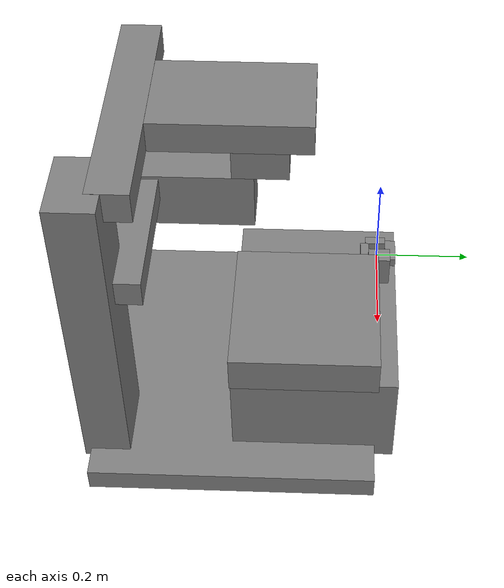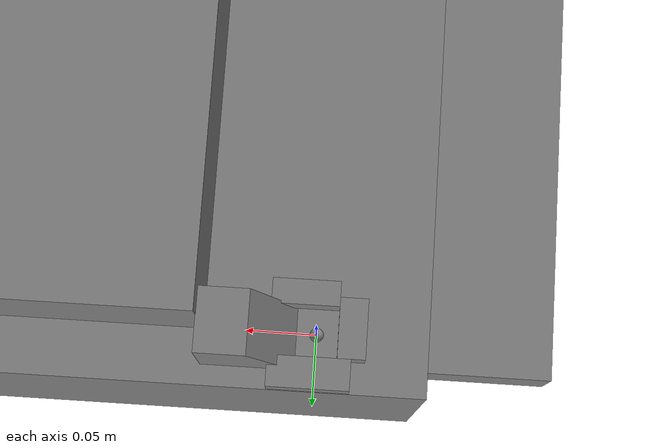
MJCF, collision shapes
<mujoco model="profactor_station">
    <compiler convexhull="true" angle="radian" meshdir="environment_parts/" />
    <default>
      <default class="collision4">
        <geom group="3" contype="1" conaffinity="1"/>
      </default>
      <default class="visual5">
        <geom group="0" contype="0" conaffinity="0"/>
      </default>
        </default>
    <asset>
        <mesh name="profactor_station" file="Profactor_station/assets_station/Profactor_camera_station0.obj" scale="1 1 1"/>

        <mesh name="col1" file="Profactor_station/assets_station/collisions/Collisions1.obj" scale="100 100 100"/>
        <mesh name="col2" file="Profactor_station/assets_station/collisions/Collisions2.obj" scale="100 100 100"/>
        <mesh name="col3" file="Profactor_station/assets_station/collisions/Collisions3.obj" scale="100 100 100"/>
        <mesh name="col4" file="Profactor_station/assets_station/collisions/Collisions4.obj" scale="100 100 100"/>
        <mesh name="col5" file="Profactor_station/assets_station/collisions/Collisions5.obj" scale="100 100 100"/>
        <mesh name="col6" file="Profactor_station/assets_station/collisions/Collisions6.obj" scale="100 100 100"/>
        <mesh name="col7" file="Profactor_station/assets_station/collisions/Collisions7.obj" scale="100 100 100"/>
        <mesh name="col8" file="Profactor_station/assets_station/collisions/Collisions8.obj" scale="100 100 100"/>
        <mesh name="col9" file="Profactor_station/assets_station/collisions/Collisions9.obj" scale="100 100 100"/>
        <mesh name="col10" file="Profactor_station/assets_station/collisions/Collisions10.obj" scale="100 100 100"/>
        <mesh name="col11" file="Profactor_station/assets_station/collisions/Collisions11.obj" scale="100 100 100"/>
        <mesh name="col12" file="Profactor_station/assets_station/collisions/Collisions12.obj" scale="100 100 100"/>
        <mesh name="col13" file="Profactor_station/assets_station/collisions/Collisions13.obj" scale="100 100 100"/>
    </asset>
  <worldbody>
      <!--light pos="0 0 1.5" dir="0 0 -1" directional="true"/-->
        <body name="profactor_station" pos="0 0 0.0">
            <site name="gripping_point" pos="0 0 0" quat="0 -1 0 0"/>
              <inertial pos="0.0 0.0 0.0"  mass="1.0" diaginertia="0.0 0.0 0.0"/>
              <geom name="profactor_station" mesh="profactor_station"  type="mesh" class="visual5"/>

              <geom name="col1" mesh="col1"  type="mesh" class="collision4" />
              <geom name="col2" mesh="col2"  type="mesh" class="collision4" />
              <geom name="col3" mesh="col3"  type="mesh" class="collision4" />
              <geom name="col4" mesh="col4"  type="mesh" class="collision4" />
              <geom name="col5" mesh="col5"  type="mesh" class="collision4" />
              <geom name="col6" mesh="col6"  type="mesh" class="collision4" />
              <geom name="col7" mesh="col7"  type="mesh" class="collision4" />
              <geom name="col8" mesh="col8"  type="mesh" class="collision4" />
              <geom name="col9" mesh="col9"  type="mesh" class="collision4" />
              <geom name="col10" mesh="col10"  type="mesh" class="collision4" />

              <geom name="col11" mesh="col11"  type="mesh" class="collision4" />
              <geom name="col12" mesh="col12"  type="mesh" class="collision4" />
              <geom name="col13" mesh="col13"  type="mesh" class="collision4" />
              </body>
  </worldbody>
</mujoco>
